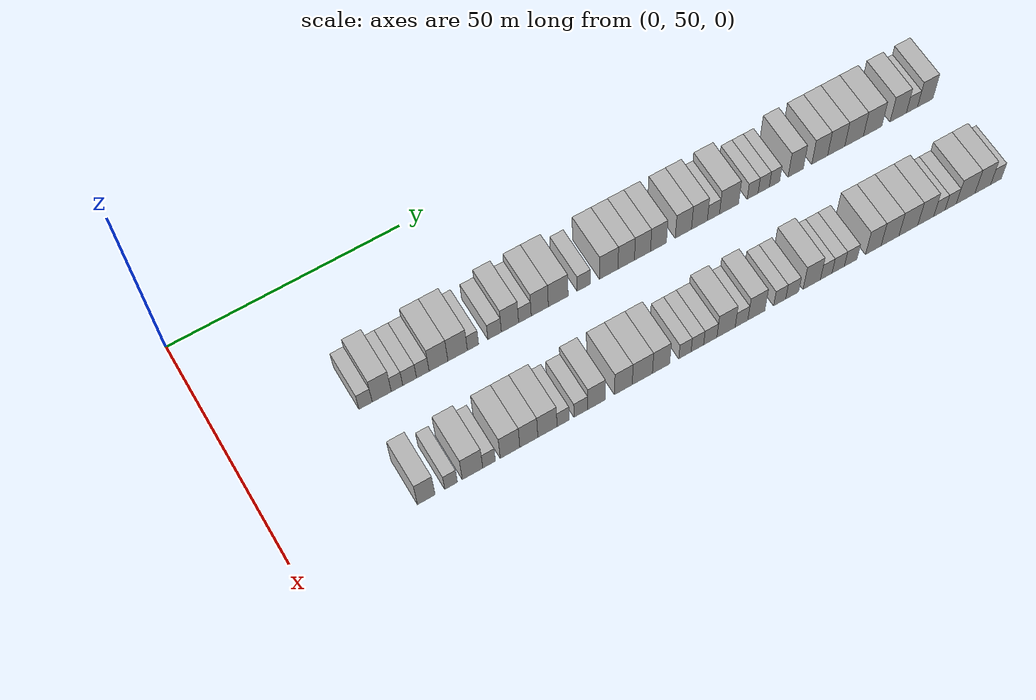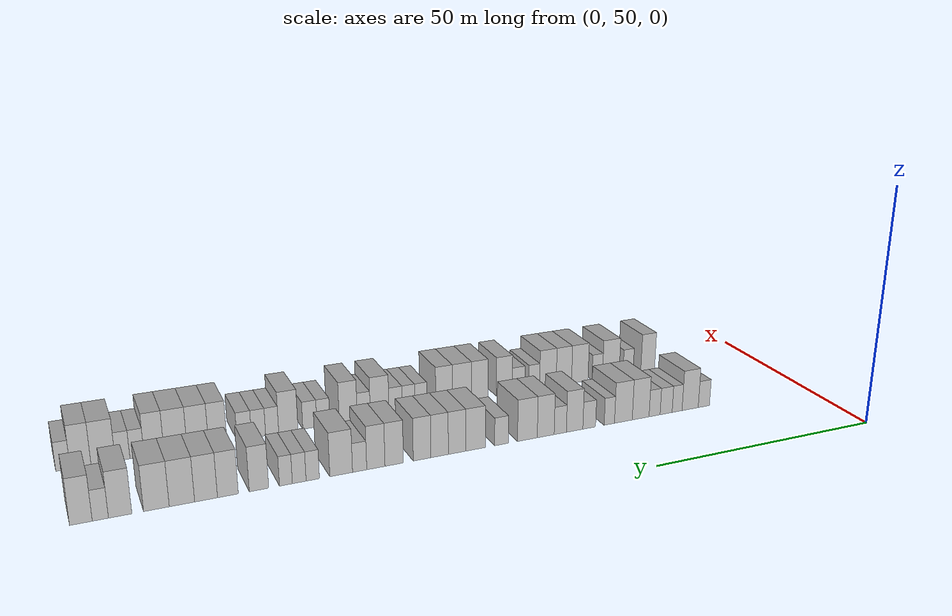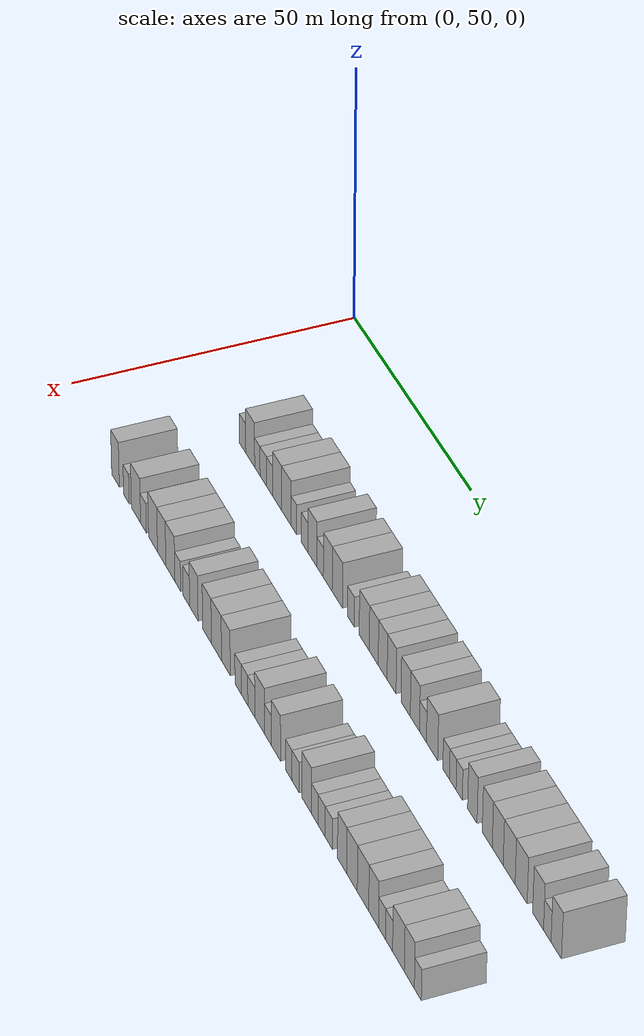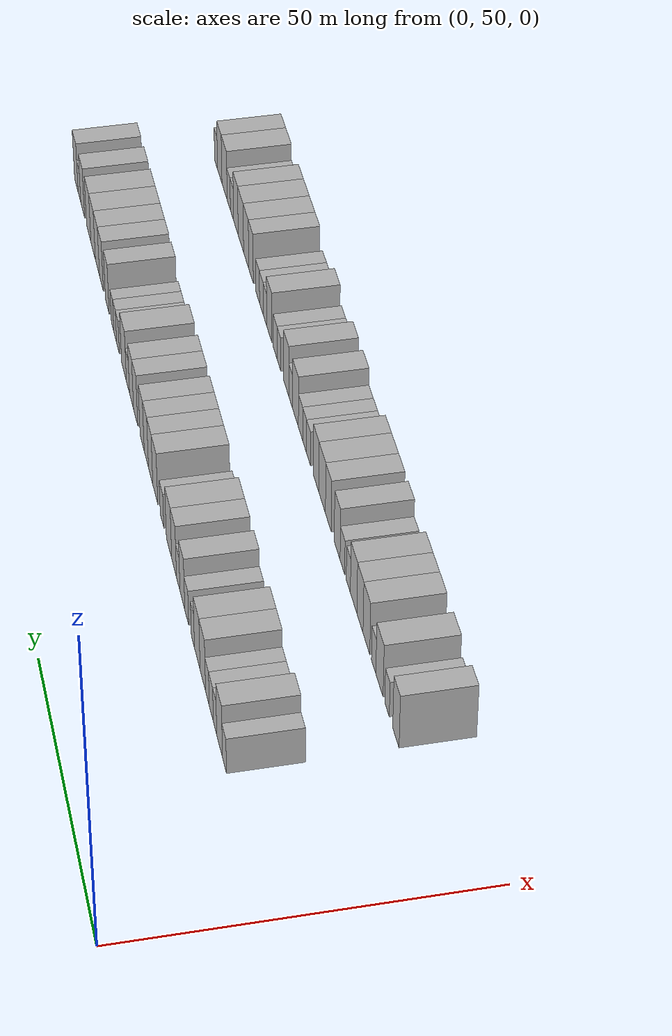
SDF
<sdf version="1.6">
 <world name="default">
  <model name="building_65">
   <static>1</static>
   <pose>25.0000 76.3048 0 0.000000 0.000000 0.000000</pose>
   <link name="link">
    <pose>0 0 3.00 0 0 0</pose>
    <collision name="collision"><geometry><box><size>10.0000 2.8117 6.0000</size></box></geometry></collision>
    <visual name="visual">
     <cast_shadows>0</cast_shadows>
     <geometry><box><size>10.0000 2.8117 6.0000</size></box></geometry>
     <material>
      <script>
       <uri>model://HANNAS_wall/materials/scripts</uri>
       <uri>model://HANNAS_wall/materials/textures</uri>
       <name>vrc/HANNAS_wall</name>
      </script>
     </material>
    </visual>
   </link>
  </model>
  <model name="building_66">
   <static>1</static>
   <pose>25.0000 79.7198 0 0.000000 0.000000 0.000000</pose>
   <link name="link">
    <pose>0 0 4.50 0 0 0</pose>
    <collision name="collision"><geometry><box><size>10.0000 4.0183 9.0000</size></box></geometry></collision>
    <visual name="visual">
     <cast_shadows>0</cast_shadows>
     <geometry><box><size>10.0000 4.0183 9.0000</size></box></geometry>
     <material>
      <script>
       <uri>model://HANNAS_wall/materials/scripts</uri>
       <uri>model://HANNAS_wall/materials/textures</uri>
       <name>vrc/HANNAS_wall</name>
      </script>
     </material>
    </visual>
   </link>
  </model>
  <model name="building_67">
   <static>1</static>
   <pose>25.0000 82.9447 0 0.000000 0.000000 0.000000</pose>
   <link name="link">
    <pose>0 0 3.00 0 0 0</pose>
    <collision name="collision"><geometry><box><size>10.0000 2.4314 6.0000</size></box></geometry></collision>
    <visual name="visual">
     <cast_shadows>0</cast_shadows>
     <geometry><box><size>10.0000 2.4314 6.0000</size></box></geometry>
     <material>
      <script>
       <uri>model://HANNAS_wall/materials/scripts</uri>
       <uri>model://HANNAS_wall/materials/textures</uri>
       <name>vrc/HANNAS_wall</name>
      </script>
     </material>
    </visual>
   </link>
  </model>
  <model name="building_68">
   <static>1</static>
   <pose>25.0000 85.6265 0 0.000000 0.000000 0.000000</pose>
   <link name="link">
    <pose>0 0 3.00 0 0 0</pose>
    <collision name="collision"><geometry><box><size>10.0000 2.9322 6.0000</size></box></geometry></collision>
    <visual name="visual">
     <cast_shadows>0</cast_shadows>
     <geometry><box><size>10.0000 2.9322 6.0000</size></box></geometry>
     <material>
      <script>
       <uri>model://HANNAS_wall/materials/scripts</uri>
       <uri>model://HANNAS_wall/materials/textures</uri>
       <name>vrc/HANNAS_wall</name>
      </script>
     </material>
    </visual>
   </link>
  </model>
  <model name="building_69">
   <static>1</static>
   <pose>25.0000 88.4260 0 0.000000 0.000000 0.000000</pose>
   <link name="link">
    <pose>0 0 3.00 0 0 0</pose>
    <collision name="collision"><geometry><box><size>10.0000 2.6669 6.0000</size></box></geometry></collision>
    <visual name="visual">
     <cast_shadows>0</cast_shadows>
     <geometry><box><size>10.0000 2.6669 6.0000</size></box></geometry>
     <material>
      <script>
       <uri>model://HANNAS_wall/materials/scripts</uri>
       <uri>model://HANNAS_wall/materials/textures</uri>
       <name>vrc/HANNAS_wall</name>
      </script>
     </material>
    </visual>
   </link>
  </model>
  <model name="building_70">
   <static>1</static>
   <pose>25.0000 91.7732 0 0.000000 0.000000 0.000000</pose>
   <link name="link">
    <pose>0 0 4.50 0 0 0</pose>
    <collision name="collision"><geometry><box><size>10.0000 4.0275 9.0000</size></box></geometry></collision>
    <visual name="visual">
     <cast_shadows>0</cast_shadows>
     <geometry><box><size>10.0000 4.0275 9.0000</size></box></geometry>
     <material>
      <script>
       <uri>model://HANNAS_wall/materials/scripts</uri>
       <uri>model://HANNAS_wall/materials/textures</uri>
       <name>vrc/HANNAS_wall</name>
      </script>
     </material>
    </visual>
   </link>
  </model>
  <model name="building_71">
   <static>1</static>
   <pose>25.0000 95.8864 0 0.000000 0.000000 0.000000</pose>
   <link name="link">
    <pose>0 0 4.50 0 0 0</pose>
    <collision name="collision"><geometry><box><size>10.0000 4.1989 9.0000</size></box></geometry></collision>
    <visual name="visual">
     <cast_shadows>0</cast_shadows>
     <geometry><box><size>10.0000 4.1989 9.0000</size></box></geometry>
     <material>
      <script>
       <uri>model://HANNAS_wall/materials/scripts</uri>
       <uri>model://HANNAS_wall/materials/textures</uri>
       <name>vrc/HANNAS_wall</name>
      </script>
     </material>
    </visual>
   </link>
  </model>
  <model name="building_72">
   <static>1</static>
   <pose>25.0000 99.1921 0 0.000000 0.000000 0.000000</pose>
   <link name="link">
    <pose>0 0 3.00 0 0 0</pose>
    <collision name="collision"><geometry><box><size>10.0000 2.4126 6.0000</size></box></geometry></collision>
    <visual name="visual">
     <cast_shadows>0</cast_shadows>
     <geometry><box><size>10.0000 2.4126 6.0000</size></box></geometry>
     <material>
      <script>
       <uri>model://HANNAS_wall/materials/scripts</uri>
       <uri>model://HANNAS_wall/materials/textures</uri>
       <name>vrc/HANNAS_wall</name>
      </script>
     </material>
    </visual>
   </link>
  </model>
  <model name="building_73">
   <static>1</static>
   <pose>25.0000 103.8671 0 0.000000 0.000000 0.000000</pose>
   <link name="link">
    <pose>0 0 3.00 0 0 0</pose>
    <collision name="collision"><geometry><box><size>10.0000 2.9373 6.0000</size></box></geometry></collision>
    <visual name="visual">
     <cast_shadows>0</cast_shadows>
     <geometry><box><size>10.0000 2.9373 6.0000</size></box></geometry>
     <material>
      <script>
       <uri>model://HANNAS_wall/materials/scripts</uri>
       <uri>model://HANNAS_wall/materials/textures</uri>
       <name>vrc/HANNAS_wall</name>
      </script>
     </material>
    </visual>
   </link>
  </model>
  <model name="building_74">
   <static>1</static>
   <pose>25.0000 107.2173 0 0.000000 0.000000 0.000000</pose>
   <link name="link">
    <pose>0 0 4.50 0 0 0</pose>
    <collision name="collision"><geometry><box><size>10.0000 3.7632 9.0000</size></box></geometry></collision>
    <visual name="visual">
     <cast_shadows>0</cast_shadows>
     <geometry><box><size>10.0000 3.7632 9.0000</size></box></geometry>
     <material>
      <script>
       <uri>model://HANNAS_wall/materials/scripts</uri>
       <uri>model://HANNAS_wall/materials/textures</uri>
       <name>vrc/HANNAS_wall</name>
      </script>
     </material>
    </visual>
   </link>
  </model>
  <model name="building_75">
   <static>1</static>
   <pose>25.0000 110.4770 0 0.000000 0.000000 0.000000</pose>
   <link name="link">
    <pose>0 0 3.00 0 0 0</pose>
    <collision name="collision"><geometry><box><size>10.0000 2.7562 6.0000</size></box></geometry></collision>
    <visual name="visual">
     <cast_shadows>0</cast_shadows>
     <geometry><box><size>10.0000 2.7562 6.0000</size></box></geometry>
     <material>
      <script>
       <uri>model://HANNAS_wall/materials/scripts</uri>
       <uri>model://HANNAS_wall/materials/textures</uri>
       <name>vrc/HANNAS_wall</name>
      </script>
     </material>
    </visual>
   </link>
  </model>
  <model name="building_76">
   <static>1</static>
   <pose>25.0000 113.7417 0 0.000000 0.000000 0.000000</pose>
   <link name="link">
    <pose>0 0 4.50 0 0 0</pose>
    <collision name="collision"><geometry><box><size>10.0000 3.7732 9.0000</size></box></geometry></collision>
    <visual name="visual">
     <cast_shadows>0</cast_shadows>
     <geometry><box><size>10.0000 3.7732 9.0000</size></box></geometry>
     <material>
      <script>
       <uri>model://HANNAS_wall/materials/scripts</uri>
       <uri>model://HANNAS_wall/materials/textures</uri>
       <name>vrc/HANNAS_wall</name>
      </script>
     </material>
    </visual>
   </link>
  </model>
  <model name="building_77">
   <static>1</static>
   <pose>25.0000 117.8129 0 0.000000 0.000000 0.000000</pose>
   <link name="link">
    <pose>0 0 4.50 0 0 0</pose>
    <collision name="collision"><geometry><box><size>10.0000 4.3692 9.0000</size></box></geometry></collision>
    <visual name="visual">
     <cast_shadows>0</cast_shadows>
     <geometry><box><size>10.0000 4.3692 9.0000</size></box></geometry>
     <material>
      <script>
       <uri>model://HANNAS_wall/materials/scripts</uri>
       <uri>model://HANNAS_wall/materials/textures</uri>
       <name>vrc/HANNAS_wall</name>
      </script>
     </material>
    </visual>
   </link>
  </model>
  <model name="building_78">
   <static>1</static>
   <pose>25.0000 123.4860 0 0.000000 0.000000 0.000000</pose>
   <link name="link">
    <pose>0 0 3.00 0 0 0</pose>
    <collision name="collision"><geometry><box><size>10.0000 2.9769 6.0000</size></box></geometry></collision>
    <visual name="visual">
     <cast_shadows>0</cast_shadows>
     <geometry><box><size>10.0000 2.9769 6.0000</size></box></geometry>
     <material>
      <script>
       <uri>model://HANNAS_wall/materials/scripts</uri>
       <uri>model://HANNAS_wall/materials/textures</uri>
       <name>vrc/HANNAS_wall</name>
      </script>
     </material>
    </visual>
   </link>
  </model>
  <model name="building_79">
   <static>1</static>
   <pose>25.0000 129.0513 0 0.000000 0.000000 0.000000</pose>
   <link name="link">
    <pose>0 0 4.50 0 0 0</pose>
    <collision name="collision"><geometry><box><size>10.0000 4.1537 9.0000</size></box></geometry></collision>
    <visual name="visual">
     <cast_shadows>0</cast_shadows>
     <geometry><box><size>10.0000 4.1537 9.0000</size></box></geometry>
     <material>
      <script>
       <uri>model://HANNAS_wall/materials/scripts</uri>
       <uri>model://HANNAS_wall/materials/textures</uri>
       <name>vrc/HANNAS_wall</name>
      </script>
     </material>
    </visual>
   </link>
  </model>
  <model name="building_80">
   <static>1</static>
   <pose>25.0000 132.9724 0 0.000000 0.000000 0.000000</pose>
   <link name="link">
    <pose>0 0 4.50 0 0 0</pose>
    <collision name="collision"><geometry><box><size>10.0000 3.6885 9.0000</size></box></geometry></collision>
    <visual name="visual">
     <cast_shadows>0</cast_shadows>
     <geometry><box><size>10.0000 3.6885 9.0000</size></box></geometry>
     <material>
      <script>
       <uri>model://HANNAS_wall/materials/scripts</uri>
       <uri>model://HANNAS_wall/materials/textures</uri>
       <name>vrc/HANNAS_wall</name>
      </script>
     </material>
    </visual>
   </link>
  </model>
  <model name="building_81">
   <static>1</static>
   <pose>25.0000 136.6347 0 0.000000 0.000000 0.000000</pose>
   <link name="link">
    <pose>0 0 4.50 0 0 0</pose>
    <collision name="collision"><geometry><box><size>10.0000 3.6360 9.0000</size></box></geometry></collision>
    <visual name="visual">
     <cast_shadows>0</cast_shadows>
     <geometry><box><size>10.0000 3.6360 9.0000</size></box></geometry>
     <material>
      <script>
       <uri>model://HANNAS_wall/materials/scripts</uri>
       <uri>model://HANNAS_wall/materials/textures</uri>
       <name>vrc/HANNAS_wall</name>
      </script>
     </material>
    </visual>
   </link>
  </model>
  <model name="building_82">
   <static>1</static>
   <pose>25.0000 140.2624 0 0.000000 0.000000 0.000000</pose>
   <link name="link">
    <pose>0 0 4.50 0 0 0</pose>
    <collision name="collision"><geometry><box><size>10.0000 3.6195 9.0000</size></box></geometry></collision>
    <visual name="visual">
     <cast_shadows>0</cast_shadows>
     <geometry><box><size>10.0000 3.6195 9.0000</size></box></geometry>
     <material>
      <script>
       <uri>model://HANNAS_wall/materials/scripts</uri>
       <uri>model://HANNAS_wall/materials/textures</uri>
       <name>vrc/HANNAS_wall</name>
      </script>
     </material>
    </visual>
   </link>
  </model>
  <model name="building_83">
   <static>1</static>
   <pose>25.0000 145.9324 0 0.000000 0.000000 0.000000</pose>
   <link name="link">
    <pose>0 0 4.50 0 0 0</pose>
    <collision name="collision"><geometry><box><size>10.0000 3.7206 9.0000</size></box></geometry></collision>
    <visual name="visual">
     <cast_shadows>0</cast_shadows>
     <geometry><box><size>10.0000 3.7206 9.0000</size></box></geometry>
     <material>
      <script>
       <uri>model://HANNAS_wall/materials/scripts</uri>
       <uri>model://HANNAS_wall/materials/textures</uri>
       <name>vrc/HANNAS_wall</name>
      </script>
     </material>
    </visual>
   </link>
  </model>
  <model name="building_84">
   <static>1</static>
   <pose>25.0000 149.6136 0 0.000000 0.000000 0.000000</pose>
   <link name="link">
    <pose>0 0 4.50 0 0 0</pose>
    <collision name="collision"><geometry><box><size>10.0000 3.6417 9.0000</size></box></geometry></collision>
    <visual name="visual">
     <cast_shadows>0</cast_shadows>
     <geometry><box><size>10.0000 3.6417 9.0000</size></box></geometry>
     <material>
      <script>
       <uri>model://HANNAS_wall/materials/scripts</uri>
       <uri>model://HANNAS_wall/materials/textures</uri>
       <name>vrc/HANNAS_wall</name>
      </script>
     </material>
    </visual>
   </link>
  </model>
  <model name="building_85">
   <static>1</static>
   <pose>25.0000 152.8341 0 0.000000 0.000000 0.000000</pose>
   <link name="link">
    <pose>0 0 3.00 0 0 0</pose>
    <collision name="collision"><geometry><box><size>10.0000 2.7994 6.0000</size></box></geometry></collision>
    <visual name="visual">
     <cast_shadows>0</cast_shadows>
     <geometry><box><size>10.0000 2.7994 6.0000</size></box></geometry>
     <material>
      <script>
       <uri>model://HANNAS_wall/materials/scripts</uri>
       <uri>model://HANNAS_wall/materials/textures</uri>
       <name>vrc/HANNAS_wall</name>
      </script>
     </material>
    </visual>
   </link>
  </model>
  <model name="building_86">
   <static>1</static>
   <pose>25.0000 156.4471 0 0.000000 0.000000 0.000000</pose>
   <link name="link">
    <pose>0 0 4.50 0 0 0</pose>
    <collision name="collision"><geometry><box><size>10.0000 4.4266 9.0000</size></box></geometry></collision>
    <visual name="visual">
     <cast_shadows>0</cast_shadows>
     <geometry><box><size>10.0000 4.4266 9.0000</size></box></geometry>
     <material>
      <script>
       <uri>model://HANNAS_wall/materials/scripts</uri>
       <uri>model://HANNAS_wall/materials/textures</uri>
       <name>vrc/HANNAS_wall</name>
      </script>
     </material>
    </visual>
   </link>
  </model>
  <model name="building_87">
   <static>1</static>
   <pose>25.0000 161.9369 0 0.000000 0.000000 0.000000</pose>
   <link name="link">
    <pose>0 0 3.00 0 0 0</pose>
    <collision name="collision"><geometry><box><size>10.0000 2.5530 6.0000</size></box></geometry></collision>
    <visual name="visual">
     <cast_shadows>0</cast_shadows>
     <geometry><box><size>10.0000 2.5530 6.0000</size></box></geometry>
     <material>
      <script>
       <uri>model://HANNAS_wall/materials/scripts</uri>
       <uri>model://HANNAS_wall/materials/textures</uri>
       <name>vrc/HANNAS_wall</name>
      </script>
     </material>
    </visual>
   </link>
  </model>
  <model name="building_88">
   <static>1</static>
   <pose>25.0000 164.5136 0 0.000000 0.000000 0.000000</pose>
   <link name="link">
    <pose>0 0 3.00 0 0 0</pose>
    <collision name="collision"><geometry><box><size>10.0000 2.6004 6.0000</size></box></geometry></collision>
    <visual name="visual">
     <cast_shadows>0</cast_shadows>
     <geometry><box><size>10.0000 2.6004 6.0000</size></box></geometry>
     <material>
      <script>
       <uri>model://HANNAS_wall/materials/scripts</uri>
       <uri>model://HANNAS_wall/materials/textures</uri>
       <name>vrc/HANNAS_wall</name>
      </script>
     </material>
    </visual>
   </link>
  </model>
  <model name="building_89">
   <static>1</static>
   <pose>25.0000 167.0286 0 0.000000 0.000000 0.000000</pose>
   <link name="link">
    <pose>0 0 3.00 0 0 0</pose>
    <collision name="collision"><geometry><box><size>10.0000 2.4295 6.0000</size></box></geometry></collision>
    <visual name="visual">
     <cast_shadows>0</cast_shadows>
     <geometry><box><size>10.0000 2.4295 6.0000</size></box></geometry>
     <material>
      <script>
       <uri>model://HANNAS_wall/materials/scripts</uri>
       <uri>model://HANNAS_wall/materials/textures</uri>
       <name>vrc/HANNAS_wall</name>
      </script>
     </material>
    </visual>
   </link>
  </model>
  <model name="building_90">
   <static>1</static>
   <pose>25.0000 172.0446 0 0.000000 0.000000 0.000000</pose>
   <link name="link">
    <pose>0 0 4.50 0 0 0</pose>
    <collision name="collision"><geometry><box><size>10.0000 3.6026 9.0000</size></box></geometry></collision>
    <visual name="visual">
     <cast_shadows>0</cast_shadows>
     <geometry><box><size>10.0000 3.6026 9.0000</size></box></geometry>
     <material>
      <script>
       <uri>model://HANNAS_wall/materials/scripts</uri>
       <uri>model://HANNAS_wall/materials/textures</uri>
       <name>vrc/HANNAS_wall</name>
      </script>
     </material>
    </visual>
   </link>
  </model>
  <model name="building_91">
   <static>1</static>
   <pose>25.0000 177.7338 0 0.000000 0.000000 0.000000</pose>
   <link name="link">
    <pose>0 0 4.50 0 0 0</pose>
    <collision name="collision"><geometry><box><size>10.0000 3.7758 9.0000</size></box></geometry></collision>
    <visual name="visual">
     <cast_shadows>0</cast_shadows>
     <geometry><box><size>10.0000 3.7758 9.0000</size></box></geometry>
     <material>
      <script>
       <uri>model://HANNAS_wall/materials/scripts</uri>
       <uri>model://HANNAS_wall/materials/textures</uri>
       <name>vrc/HANNAS_wall</name>
      </script>
     </material>
    </visual>
   </link>
  </model>
  <model name="building_92">
   <static>1</static>
   <pose>25.0000 181.6630 0 0.000000 0.000000 0.000000</pose>
   <link name="link">
    <pose>0 0 4.50 0 0 0</pose>
    <collision name="collision"><geometry><box><size>10.0000 4.0826 9.0000</size></box></geometry></collision>
    <visual name="visual">
     <cast_shadows>0</cast_shadows>
     <geometry><box><size>10.0000 4.0826 9.0000</size></box></geometry>
     <material>
      <script>
       <uri>model://HANNAS_wall/materials/scripts</uri>
       <uri>model://HANNAS_wall/materials/textures</uri>
       <name>vrc/HANNAS_wall</name>
      </script>
     </material>
    </visual>
   </link>
  </model>
  <model name="building_93">
   <static>1</static>
   <pose>25.0000 185.9407 0 0.000000 0.000000 0.000000</pose>
   <link name="link">
    <pose>0 0 4.50 0 0 0</pose>
    <collision name="collision"><geometry><box><size>10.0000 4.4726 9.0000</size></box></geometry></collision>
    <visual name="visual">
     <cast_shadows>0</cast_shadows>
     <geometry><box><size>10.0000 4.4726 9.0000</size></box></geometry>
     <material>
      <script>
       <uri>model://HANNAS_wall/materials/scripts</uri>
       <uri>model://HANNAS_wall/materials/textures</uri>
       <name>vrc/HANNAS_wall</name>
      </script>
     </material>
    </visual>
   </link>
  </model>
  <model name="building_94">
   <static>1</static>
   <pose>25.0000 190.4036 0 0.000000 0.000000 0.000000</pose>
   <link name="link">
    <pose>0 0 4.50 0 0 0</pose>
    <collision name="collision"><geometry><box><size>10.0000 4.4531 9.0000</size></box></geometry></collision>
    <visual name="visual">
     <cast_shadows>0</cast_shadows>
     <geometry><box><size>10.0000 4.4531 9.0000</size></box></geometry>
     <material>
      <script>
       <uri>model://HANNAS_wall/materials/scripts</uri>
       <uri>model://HANNAS_wall/materials/textures</uri>
       <name>vrc/HANNAS_wall</name>
      </script>
     </material>
    </visual>
   </link>
  </model>
  <model name="building_95">
   <static>1</static>
   <pose>25.0000 196.6165 0 0.000000 0.000000 0.000000</pose>
   <link name="link">
    <pose>0 0 4.50 0 0 0</pose>
    <collision name="collision"><geometry><box><size>10.0000 3.9728 9.0000</size></box></geometry></collision>
    <visual name="visual">
     <cast_shadows>0</cast_shadows>
     <geometry><box><size>10.0000 3.9728 9.0000</size></box></geometry>
     <material>
      <script>
       <uri>model://HANNAS_wall/materials/scripts</uri>
       <uri>model://HANNAS_wall/materials/textures</uri>
       <name>vrc/HANNAS_wall</name>
      </script>
     </material>
    </visual>
   </link>
  </model>
  <model name="building_96">
   <static>1</static>
   <pose>25.0000 199.9591 0 0.000000 0.000000 0.000000</pose>
   <link name="link">
    <pose>0 0 3.00 0 0 0</pose>
    <collision name="collision"><geometry><box><size>10.0000 2.7123 6.0000</size></box></geometry></collision>
    <visual name="visual">
     <cast_shadows>0</cast_shadows>
     <geometry><box><size>10.0000 2.7123 6.0000</size></box></geometry>
     <material>
      <script>
       <uri>model://HANNAS_wall/materials/scripts</uri>
       <uri>model://HANNAS_wall/materials/textures</uri>
       <name>vrc/HANNAS_wall</name>
      </script>
     </material>
    </visual>
   </link>
  </model>
  <model name="building_97">
   <static>1</static>
   <pose>25.0000 203.2015 0 0.000000 0.000000 0.000000</pose>
   <link name="link">
    <pose>0 0 4.50 0 0 0</pose>
    <collision name="collision"><geometry><box><size>10.0000 3.7725 9.0000</size></box></geometry></collision>
    <visual name="visual">
     <cast_shadows>0</cast_shadows>
     <geometry><box><size>10.0000 3.7725 9.0000</size></box></geometry>
     <material>
      <script>
       <uri>model://HANNAS_wall/materials/scripts</uri>
       <uri>model://HANNAS_wall/materials/textures</uri>
       <name>vrc/HANNAS_wall</name>
      </script>
     </material>
    </visual>
   </link>
  </model>
  <model name="building_168">
   <static>1</static>
   <pose>47.0000 76.8919 0 0.000000 0.000000 0.000000</pose>
   <link name="link">
    <pose>0 0 4.50 0 0 0</pose>
    <collision name="collision"><geometry><box><size>10.0000 3.6509 9.0000</size></box></geometry></collision>
    <visual name="visual">
     <cast_shadows>0</cast_shadows>
     <geometry><box><size>10.0000 3.6509 9.0000</size></box></geometry>
     <material>
      <script>
       <uri>model://HANNAS_wall/materials/scripts</uri>
       <uri>model://HANNAS_wall/materials/textures</uri>
       <name>vrc/HANNAS_wall</name>
      </script>
     </material>
    </visual>
   </link>
  </model>
  <model name="building_169">
   <static>1</static>
   <pose>47.0000 82.0437 0 0.000000 0.000000 0.000000</pose>
   <link name="link">
    <pose>0 0 3.00 0 0 0</pose>
    <collision name="collision"><geometry><box><size>10.0000 2.6528 6.0000</size></box></geometry></collision>
    <visual name="visual">
     <cast_shadows>0</cast_shadows>
     <geometry><box><size>10.0000 2.6528 6.0000</size></box></geometry>
     <material>
      <script>
       <uri>model://HANNAS_wall/materials/scripts</uri>
       <uri>model://HANNAS_wall/materials/textures</uri>
       <name>vrc/HANNAS_wall</name>
      </script>
     </material>
    </visual>
   </link>
  </model>
  <model name="building_170">
   <static>1</static>
   <pose>47.0000 86.5234 0 0.000000 0.000000 0.000000</pose>
   <link name="link">
    <pose>0 0 4.50 0 0 0</pose>
    <collision name="collision"><geometry><box><size>10.0000 4.3067 9.0000</size></box></geometry></collision>
    <visual name="visual">
     <cast_shadows>0</cast_shadows>
     <geometry><box><size>10.0000 4.3067 9.0000</size></box></geometry>
     <material>
      <script>
       <uri>model://HANNAS_wall/materials/scripts</uri>
       <uri>model://HANNAS_wall/materials/textures</uri>
       <name>vrc/HANNAS_wall</name>
      </script>
     </material>
    </visual>
   </link>
  </model>
  <model name="building_171">
   <static>1</static>
   <pose>47.0000 90.0090 0 0.000000 0.000000 0.000000</pose>
   <link name="link">
    <pose>0 0 3.00 0 0 0</pose>
    <collision name="collision"><geometry><box><size>10.0000 2.6646 6.0000</size></box></geometry></collision>
    <visual name="visual">
     <cast_shadows>0</cast_shadows>
     <geometry><box><size>10.0000 2.6646 6.0000</size></box></geometry>
     <material>
      <script>
       <uri>model://HANNAS_wall/materials/scripts</uri>
       <uri>model://HANNAS_wall/materials/textures</uri>
       <name>vrc/HANNAS_wall</name>
      </script>
     </material>
    </visual>
   </link>
  </model>
  <model name="building_172">
   <static>1</static>
   <pose>47.0000 94.4159 0 0.000000 0.000000 0.000000</pose>
   <link name="link">
    <pose>0 0 4.50 0 0 0</pose>
    <collision name="collision"><geometry><box><size>10.0000 4.1493 9.0000</size></box></geometry></collision>
    <visual name="visual">
     <cast_shadows>0</cast_shadows>
     <geometry><box><size>10.0000 4.1493 9.0000</size></box></geometry>
     <material>
      <script>
       <uri>model://HANNAS_wall/materials/scripts</uri>
       <uri>model://HANNAS_wall/materials/textures</uri>
       <name>vrc/HANNAS_wall</name>
      </script>
     </material>
    </visual>
   </link>
  </model>
  <model name="building_173">
   <static>1</static>
   <pose>47.0000 98.4059 0 0.000000 0.000000 0.000000</pose>
   <link name="link">
    <pose>0 0 4.50 0 0 0</pose>
    <collision name="collision"><geometry><box><size>10.0000 3.8306 9.0000</size></box></geometry></collision>
    <visual name="visual">
     <cast_shadows>0</cast_shadows>
     <geometry><box><size>10.0000 3.8306 9.0000</size></box></geometry>
     <material>
      <script>
       <uri>model://HANNAS_wall/materials/scripts</uri>
       <uri>model://HANNAS_wall/materials/textures</uri>
       <name>vrc/HANNAS_wall</name>
      </script>
     </material>
    </visual>
   </link>
  </model>
  <model name="building_174">
   <static>1</static>
   <pose>47.0000 102.3677 0 0.000000 0.000000 0.000000</pose>
   <link name="link">
    <pose>0 0 4.50 0 0 0</pose>
    <collision name="collision"><geometry><box><size>10.0000 4.0931 9.0000</size></box></geometry></collision>
    <visual name="visual">
     <cast_shadows>0</cast_shadows>
     <geometry><box><size>10.0000 4.0931 9.0000</size></box></geometry>
     <material>
      <script>
       <uri>model://HANNAS_wall/materials/scripts</uri>
       <uri>model://HANNAS_wall/materials/textures</uri>
       <name>vrc/HANNAS_wall</name>
      </script>
     </material>
    </visual>
   </link>
  </model>
  <model name="building_175">
   <static>1</static>
   <pose>47.0000 105.7316 0 0.000000 0.000000 0.000000</pose>
   <link name="link">
    <pose>0 0 3.00 0 0 0</pose>
    <collision name="collision"><geometry><box><size>10.0000 2.6347 6.0000</size></box></geometry></collision>
    <visual name="visual">
     <cast_shadows>0</cast_shadows>
     <geometry><box><size>10.0000 2.6347 6.0000</size></box></geometry>
     <material>
      <script>
       <uri>model://HANNAS_wall/materials/scripts</uri>
       <uri>model://HANNAS_wall/materials/textures</uri>
       <name>vrc/HANNAS_wall</name>
      </script>
     </material>
    </visual>
   </link>
  </model>
  <model name="building_176">
   <static>1</static>
   <pose>47.0000 109.5443 0 0.000000 0.000000 0.000000</pose>
   <link name="link">
    <pose>0 0 3.00 0 0 0</pose>
    <collision name="collision"><geometry><box><size>10.0000 2.9906 6.0000</size></box></geometry></collision>
    <visual name="visual">
     <cast_shadows>0</cast_shadows>
     <geometry><box><size>10.0000 2.9906 6.0000</size></box></geometry>
     <material>
      <script>
       <uri>model://HANNAS_wall/materials/scripts</uri>
       <uri>model://HANNAS_wall/materials/textures</uri>
       <name>vrc/HANNAS_wall</name>
      </script>
     </material>
    </visual>
   </link>
  </model>
  <model name="building_177">
   <static>1</static>
   <pose>47.0000 112.9303 0 0.000000 0.000000 0.000000</pose>
   <link name="link">
    <pose>0 0 4.50 0 0 0</pose>
    <collision name="collision"><geometry><box><size>10.0000 3.7814 9.0000</size></box></geometry></collision>
    <visual name="visual">
     <cast_shadows>0</cast_shadows>
     <geometry><box><size>10.0000 3.7814 9.0000</size></box></geometry>
     <material>
      <script>
       <uri>model://HANNAS_wall/materials/scripts</uri>
       <uri>model://HANNAS_wall/materials/textures</uri>
       <name>vrc/HANNAS_wall</name>
      </script>
     </material>
    </visual>
   </link>
  </model>
  <model name="building_178">
   <static>1</static>
   <pose>47.0000 118.7599 0 0.000000 0.000000 0.000000</pose>
   <link name="link">
    <pose>0 0 4.50 0 0 0</pose>
    <collision name="collision"><geometry><box><size>10.0000 3.8777 9.0000</size></box></geometry></collision>
    <visual name="visual">
     <cast_shadows>0</cast_shadows>
     <geometry><box><size>10.0000 3.8777 9.0000</size></box></geometry>
     <material>
      <script>
       <uri>model://HANNAS_wall/materials/scripts</uri>
       <uri>model://HANNAS_wall/materials/textures</uri>
       <name>vrc/HANNAS_wall</name>
      </script>
     </material>
    </visual>
   </link>
  </model>
  <model name="building_179">
   <static>1</static>
   <pose>47.0000 122.9066 0 0.000000 0.000000 0.000000</pose>
   <link name="link">
    <pose>0 0 4.50 0 0 0</pose>
    <collision name="collision"><geometry><box><size>10.0000 4.4158 9.0000</size></box></geometry></collision>
    <visual name="visual">
     <cast_shadows>0</cast_shadows>
     <geometry><box><size>10.0000 4.4158 9.0000</size></box></geometry>
     <material>
      <script>
       <uri>model://HANNAS_wall/materials/scripts</uri>
       <uri>model://HANNAS_wall/materials/textures</uri>
       <name>vrc/HANNAS_wall</name>
      </script>
     </material>
    </visual>
   </link>
  </model>
  <model name="building_180">
   <static>1</static>
   <pose>47.0000 127.0233 0 0.000000 0.000000 0.000000</pose>
   <link name="link">
    <pose>0 0 4.50 0 0 0</pose>
    <collision name="collision"><geometry><box><size>10.0000 3.8177 9.0000</size></box></geometry></collision>
    <visual name="visual">
     <cast_shadows>0</cast_shadows>
     <geometry><box><size>10.0000 3.8177 9.0000</size></box></geometry>
     <material>
      <script>
       <uri>model://HANNAS_wall/materials/scripts</uri>
       <uri>model://HANNAS_wall/materials/textures</uri>
       <name>vrc/HANNAS_wall</name>
      </script>
     </material>
    </visual>
   </link>
  </model>
  <model name="building_181">
   <static>1</static>
   <pose>47.0000 132.3008 0 0.000000 0.000000 0.000000</pose>
   <link name="link">
    <pose>0 0 3.00 0 0 0</pose>
    <collision name="collision"><geometry><box><size>10.0000 2.7374 6.0000</size></box></geometry></collision>
    <visual name="visual">
     <cast_shadows>0</cast_shadows>
     <geometry><box><size>10.0000 2.7374 6.0000</size></box></geometry>
     <material>
      <script>
       <uri>model://HANNAS_wall/materials/scripts</uri>
       <uri>model://HANNAS_wall/materials/textures</uri>
       <name>vrc/HANNAS_wall</name>
      </script>
     </material>
    </visual>
   </link>
  </model>
  <model name="building_182">
   <static>1</static>
   <pose>47.0000 135.0620 0 0.000000 0.000000 0.000000</pose>
   <link name="link">
    <pose>0 0 3.00 0 0 0</pose>
    <collision name="collision"><geometry><box><size>10.0000 2.7850 6.0000</size></box></geometry></collision>
    <visual name="visual">
     <cast_shadows>0</cast_shadows>
     <geometry><box><size>10.0000 2.7850 6.0000</size></box></geometry>
     <material>
      <script>
       <uri>model://HANNAS_wall/materials/scripts</uri>
       <uri>model://HANNAS_wall/materials/textures</uri>
       <name>vrc/HANNAS_wall</name>
      </script>
     </material>
    </visual>
   </link>
  </model>
  <model name="building_183">
   <static>1</static>
   <pose>47.0000 137.9401 0 0.000000 0.000000 0.000000</pose>
   <link name="link">
    <pose>0 0 3.00 0 0 0</pose>
    <collision name="collision"><geometry><box><size>10.0000 2.9711 6.0000</size></box></geometry></collision>
    <visual name="visual">
     <cast_shadows>0</cast_shadows>
     <geometry><box><size>10.0000 2.9711 6.0000</size></box></geometry>
     <material>
      <script>
       <uri>model://HANNAS_wall/materials/scripts</uri>
       <uri>model://HANNAS_wall/materials/textures</uri>
       <name>vrc/HANNAS_wall</name>
      </script>
     </material>
    </visual>
   </link>
  </model>
  <model name="building_184">
   <static>1</static>
   <pose>47.0000 141.4742 0 0.000000 0.000000 0.000000</pose>
   <link name="link">
    <pose>0 0 4.50 0 0 0</pose>
    <collision name="collision"><geometry><box><size>10.0000 4.0971 9.0000</size></box></geometry></collision>
    <visual name="visual">
     <cast_shadows>0</cast_shadows>
     <geometry><box><size>10.0000 4.0971 9.0000</size></box></geometry>
     <material>
      <script>
       <uri>model://HANNAS_wall/materials/scripts</uri>
       <uri>model://HANNAS_wall/materials/textures</uri>
       <name>vrc/HANNAS_wall</name>
      </script>
     </material>
    </visual>
   </link>
  </model>
  <model name="building_185">
   <static>1</static>
   <pose>47.0000 144.9459 0 0.000000 0.000000 0.000000</pose>
   <link name="link">
    <pose>0 0 3.00 0 0 0</pose>
    <collision name="collision"><geometry><box><size>10.0000 2.8463 6.0000</size></box></geometry></collision>
    <visual name="visual">
     <cast_shadows>0</cast_shadows>
     <geometry><box><size>10.0000 2.8463 6.0000</size></box></geometry>
     <material>
      <script>
       <uri>model://HANNAS_wall/materials/scripts</uri>
       <uri>model://HANNAS_wall/materials/textures</uri>
       <name>vrc/HANNAS_wall</name>
      </script>
     </material>
    </visual>
   </link>
  </model>
  <model name="building_186">
   <static>1</static>
   <pose>47.0000 148.3015 0 0.000000 0.000000 0.000000</pose>
   <link name="link">
    <pose>0 0 4.50 0 0 0</pose>
    <collision name="collision"><geometry><box><size>10.0000 3.8648 9.0000</size></box></geometry></collision>
    <visual name="visual">
     <cast_shadows>0</cast_shadows>
     <geometry><box><size>10.0000 3.8648 9.0000</size></box></geometry>
     <material>
      <script>
       <uri>model://HANNAS_wall/materials/scripts</uri>
       <uri>model://HANNAS_wall/materials/textures</uri>
       <name>vrc/HANNAS_wall</name>
      </script>
     </material>
    </visual>
   </link>
  </model>
  <model name="building_187">
   <static>1</static>
   <pose>47.0000 153.6088 0 0.000000 0.000000 0.000000</pose>
   <link name="link">
    <pose>0 0 3.00 0 0 0</pose>
    <collision name="collision"><geometry><box><size>10.0000 2.7498 6.0000</size></box></geometry></collision>
    <visual name="visual">
     <cast_shadows>0</cast_shadows>
     <geometry><box><size>10.0000 2.7498 6.0000</size></box></geometry>
     <material>
      <script>
       <uri>model://HANNAS_wall/materials/scripts</uri>
       <uri>model://HANNAS_wall/materials/textures</uri>
       <name>vrc/HANNAS_wall</name>
      </script>
     </material>
    </visual>
   </link>
  </model>
  <model name="building_188">
   <static>1</static>
   <pose>47.0000 156.4634 0 0.000000 0.000000 0.000000</pose>
   <link name="link">
    <pose>0 0 3.00 0 0 0</pose>
    <collision name="collision"><geometry><box><size>10.0000 2.9594 6.0000</size></box></geometry></collision>
    <visual name="visual">
     <cast_shadows>0</cast_shadows>
     <geometry><box><size>10.0000 2.9594 6.0000</size></box></geometry>
     <material>
      <script>
       <uri>model://HANNAS_wall/materials/scripts</uri>
       <uri>model://HANNAS_wall/materials/textures</uri>
       <name>vrc/HANNAS_wall</name>
      </script>
     </material>
    </visual>
   </link>
  </model>
  <model name="building_189">
   <static>1</static>
   <pose>47.0000 160.9398 0 0.000000 0.000000 0.000000</pose>
   <link name="link">
    <pose>0 0 4.50 0 0 0</pose>
    <collision name="collision"><geometry><box><size>10.0000 3.9934 9.0000</size></box></geometry></collision>
    <visual name="visual">
     <cast_shadows>0</cast_shadows>
     <geometry><box><size>10.0000 3.9934 9.0000</size></box></geometry>
     <material>
      <script>
       <uri>model://HANNAS_wall/materials/scripts</uri>
       <uri>model://HANNAS_wall/materials/textures</uri>
       <name>vrc/HANNAS_wall</name>
      </script>
     </material>
    </visual>
   </link>
  </model>
  <model name="building_190">
   <static>1</static>
   <pose>47.0000 164.2785 0 0.000000 0.000000 0.000000</pose>
   <link name="link">
    <pose>0 0 3.00 0 0 0</pose>
    <collision name="collision"><geometry><box><size>10.0000 2.6839 6.0000</size></box></geometry></collision>
    <visual name="visual">
     <cast_shadows>0</cast_shadows>
     <geometry><box><size>10.0000 2.6839 6.0000</size></box></geometry>
     <material>
      <script>
       <uri>model://HANNAS_wall/materials/scripts</uri>
       <uri>model://HANNAS_wall/materials/textures</uri>
       <name>vrc/HANNAS_wall</name>
      </script>
     </material>
    </visual>
   </link>
  </model>
  <model name="building_191">
   <static>1</static>
   <pose>47.0000 167.0557 0 0.000000 0.000000 0.000000</pose>
   <link name="link">
    <pose>0 0 3.00 0 0 0</pose>
    <collision name="collision"><geometry><box><size>10.0000 2.8705 6.0000</size></box></geometry></collision>
    <visual name="visual">
     <cast_shadows>0</cast_shadows>
     <geometry><box><size>10.0000 2.8705 6.0000</size></box></geometry>
     <material>
      <script>
       <uri>model://HANNAS_wall/materials/scripts</uri>
       <uri>model://HANNAS_wall/materials/textures</uri>
       <name>vrc/HANNAS_wall</name>
      </script>
     </material>
    </visual>
   </link>
  </model>
  <model name="building_192">
   <static>1</static>
   <pose>47.0000 169.9520 0 0.000000 0.000000 0.000000</pose>
   <link name="link">
    <pose>0 0 3.00 0 0 0</pose>
    <collision name="collision"><geometry><box><size>10.0000 2.9221 6.0000</size></box></geometry></collision>
    <visual name="visual">
     <cast_shadows>0</cast_shadows>
     <geometry><box><size>10.0000 2.9221 6.0000</size></box></geometry>
     <material>
      <script>
       <uri>model://HANNAS_wall/materials/scripts</uri>
       <uri>model://HANNAS_wall/materials/textures</uri>
       <name>vrc/HANNAS_wall</name>
      </script>
     </material>
    </visual>
   </link>
  </model>
  <model name="building_193">
   <static>1</static>
   <pose>47.0000 175.2316 0 0.000000 0.000000 0.000000</pose>
   <link name="link">
    <pose>0 0 4.50 0 0 0</pose>
    <collision name="collision"><geometry><box><size>10.0000 3.6372 9.0000</size></box></geometry></collision>
    <visual name="visual">
     <cast_shadows>0</cast_shadows>
     <geometry><box><size>10.0000 3.6372 9.0000</size></box></geometry>
     <material>
      <script>
       <uri>model://HANNAS_wall/materials/scripts</uri>
       <uri>model://HANNAS_wall/materials/textures</uri>
       <name>vrc/HANNAS_wall</name>
      </script>
     </material>
    </visual>
   </link>
  </model>
  <model name="building_194">
   <static>1</static>
   <pose>47.0000 179.1455 0 0.000000 0.000000 0.000000</pose>
   <link name="link">
    <pose>0 0 4.50 0 0 0</pose>
    <collision name="collision"><geometry><box><size>10.0000 4.1905 9.0000</size></box></geometry></collision>
    <visual name="visual">
     <cast_shadows>0</cast_shadows>
     <geometry><box><size>10.0000 4.1905 9.0000</size></box></geometry>
     <material>
      <script>
       <uri>model://HANNAS_wall/materials/scripts</uri>
       <uri>model://HANNAS_wall/materials/textures</uri>
       <name>vrc/HANNAS_wall</name>
      </script>
     </material>
    </visual>
   </link>
  </model>
  <model name="building_195">
   <static>1</static>
   <pose>47.0000 183.4636 0 0.000000 0.000000 0.000000</pose>
   <link name="link">
    <pose>0 0 4.50 0 0 0</pose>
    <collision name="collision"><geometry><box><size>10.0000 4.4457 9.0000</size></box></geometry></collision>
    <visual name="visual">
     <cast_shadows>0</cast_shadows>
     <geometry><box><size>10.0000 4.4457 9.0000</size></box></geometry>
     <material>
      <script>
       <uri>model://HANNAS_wall/materials/scripts</uri>
       <uri>model://HANNAS_wall/materials/textures</uri>
       <name>vrc/HANNAS_wall</name>
      </script>
     </material>
    </visual>
   </link>
  </model>
  <model name="building_196">
   <static>1</static>
   <pose>47.0000 187.5838 0 0.000000 0.000000 0.000000</pose>
   <link name="link">
    <pose>0 0 4.50 0 0 0</pose>
    <collision name="collision"><geometry><box><size>10.0000 3.7947 9.0000</size></box></geometry></collision>
    <visual name="visual">
     <cast_shadows>0</cast_shadows>
     <geometry><box><size>10.0000 3.7947 9.0000</size></box></geometry>
     <material>
      <script>
       <uri>model://HANNAS_wall/materials/scripts</uri>
       <uri>model://HANNAS_wall/materials/textures</uri>
       <name>vrc/HANNAS_wall</name>
      </script>
     </material>
    </visual>
   </link>
  </model>
  <model name="building_197">
   <static>1</static>
   <pose>47.0000 190.8206 0 0.000000 0.000000 0.000000</pose>
   <link name="link">
    <pose>0 0 3.00 0 0 0</pose>
    <collision name="collision"><geometry><box><size>10.0000 2.6788 6.0000</size></box></geometry></collision>
    <visual name="visual">
     <cast_shadows>0</cast_shadows>
     <geometry><box><size>10.0000 2.6788 6.0000</size></box></geometry>
     <material>
      <script>
       <uri>model://HANNAS_wall/materials/scripts</uri>
       <uri>model://HANNAS_wall/materials/textures</uri>
       <name>vrc/HANNAS_wall</name>
      </script>
     </material>
    </visual>
   </link>
  </model>
  <model name="building_198">
   <static>1</static>
   <pose>47.0000 193.5256 0 0.000000 0.000000 0.000000</pose>
   <link name="link">
    <pose>0 0 3.00 0 0 0</pose>
    <collision name="collision"><geometry><box><size>10.0000 2.7313 6.0000</size></box></geometry></collision>
    <visual name="visual">
     <cast_shadows>0</cast_shadows>
     <geometry><box><size>10.0000 2.7313 6.0000</size></box></geometry>
     <material>
      <script>
       <uri>model://HANNAS_wall/materials/scripts</uri>
       <uri>model://HANNAS_wall/materials/textures</uri>
       <name>vrc/HANNAS_wall</name>
      </script>
     </material>
    </visual>
   </link>
  </model>
  <model name="building_199">
   <static>1</static>
   <pose>47.0000 197.1258 0 0.000000 0.000000 0.000000</pose>
   <link name="link">
    <pose>0 0 4.50 0 0 0</pose>
    <collision name="collision"><geometry><box><size>10.0000 4.4690 9.0000</size></box></geometry></collision>
    <visual name="visual">
     <cast_shadows>0</cast_shadows>
     <geometry><box><size>10.0000 4.4690 9.0000</size></box></geometry>
     <material>
      <script>
       <uri>model://HANNAS_wall/materials/scripts</uri>
       <uri>model://HANNAS_wall/materials/textures</uri>
       <name>vrc/HANNAS_wall</name>
      </script>
     </material>
    </visual>
   </link>
  </model>
  <model name="building_200">
   <static>1</static>
   <pose>47.0000 201.2596 0 0.000000 0.000000 0.000000</pose>
   <link name="link">
    <pose>0 0 4.50 0 0 0</pose>
    <collision name="collision"><geometry><box><size>10.0000 3.7986 9.0000</size></box></geometry></collision>
    <visual name="visual">
     <cast_shadows>0</cast_shadows>
     <geometry><box><size>10.0000 3.7986 9.0000</size></box></geometry>
     <material>
      <script>
       <uri>model://HANNAS_wall/materials/scripts</uri>
       <uri>model://HANNAS_wall/materials/textures</uri>
       <name>vrc/HANNAS_wall</name>
      </script>
     </material>
    </visual>
   </link>
  </model>
  <model name="building_201">
   <static>1</static>
   <pose>47.0000 204.4580 0 0.000000 0.000000 0.000000</pose>
   <link name="link">
    <pose>0 0 3.00 0 0 0</pose>
    <collision name="collision"><geometry><box><size>10.0000 2.5983 6.0000</size></box></geometry></collision>
    <visual name="visual">
     <cast_shadows>0</cast_shadows>
     <geometry><box><size>10.0000 2.5983 6.0000</size></box></geometry>
     <material>
      <script>
       <uri>model://HANNAS_wall/materials/scripts</uri>
       <uri>model://HANNAS_wall/materials/textures</uri>
       <name>vrc/HANNAS_wall</name>
      </script>
     </material>
    </visual>
   </link>
  </model>
 </world>
</sdf>
